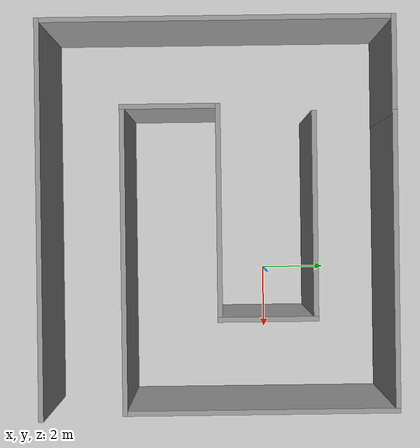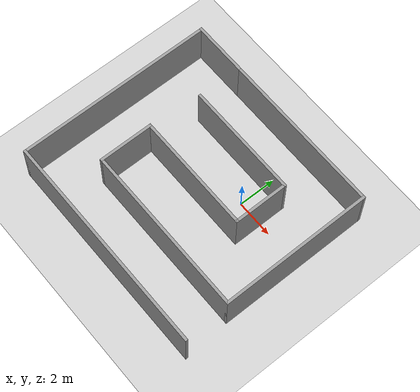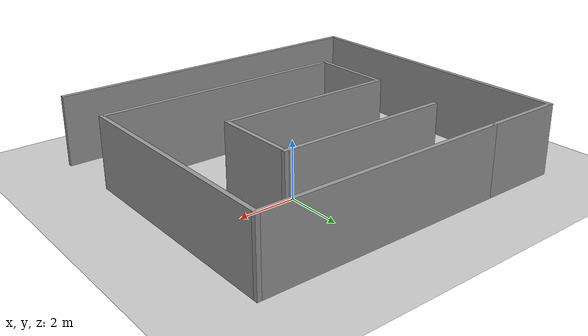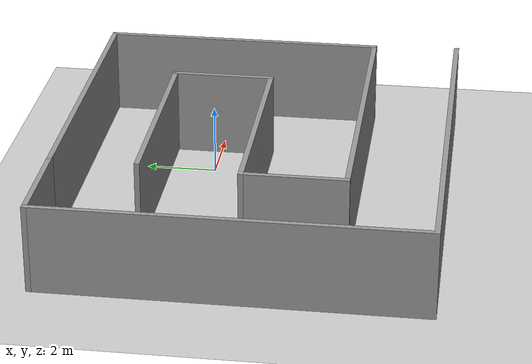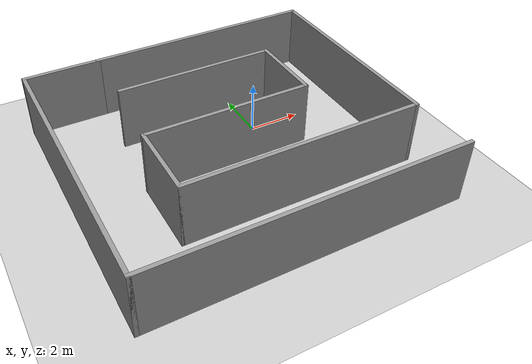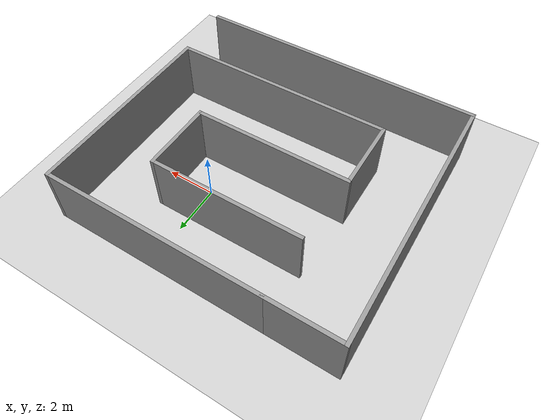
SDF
<sdf version="1.6">
 <world name="default">
  <light name="sun" type="directional">
   <pose>0 0 10 0 -0 0</pose>
   <diffuse>0.8 0.8 0.8 1</diffuse>
   <specular>0.2 0.2 0.2 1</specular>
   <attenuation>
    <range>1000</range>
    <constant>0.9</constant>
    <linear>0.01</linear>
    <quadratic>0.001</quadratic>
   </attenuation>
   <direction>-0.5 0.1 -0.9</direction>
  </light>
  <model name="ground_plane">
   <static>1</static>
   <link name="link">
    <collision name="collision">
     <geometry><plane><normal>0 0 1</normal><size>100 100</size></plane></geometry>
     <surface>
      <contact><collide_bitmask>65535</collide_bitmask></contact>
      <friction><ode><mu>100</mu><mu2>50</mu2></ode></friction>
     </surface>
    </collision>
    <visual name="visual">
     <cast_shadows>0</cast_shadows>
     <geometry><plane><normal>0 0 1</normal><size>100 100</size></plane></geometry>
     <material>
      <script><uri>file://media/materials/scripts/gazebo.material</uri><name>Gazebo/Grey</name></script>
     </material>
    </visual>
   </link>
  </model>
  <gravity>0 0 -9.8</gravity>
  <magnetic_field>6e-06 2.3e-05 -4.2e-05</magnetic_field>
  <atmosphere type="adiabatic"/>
  <physics name="default_physics" default="0" type="ode">
   <max_step_size>0.001</max_step_size>
   <real_time_factor>1</real_time_factor>
   <real_time_update_rate>1000</real_time_update_rate>
  </physics>
  <scene><ambient>0.4 0.4 0.4 1</ambient><background>0.7 0.7 0.7 1</background><shadows>1</shadows></scene>
  <audio><device>default</device></audio>
  <spherical_coordinates>
   <surface_model>EARTH_WGS84</surface_model>
   <latitude_deg>0</latitude_deg>
   <longitude_deg>0</longitude_deg>
   <elevation>0</elevation>
   <heading_deg>0</heading_deg>
  </spherical_coordinates>
  <model name="Untitled">
   <pose>-1.68126 -1.5312 0 0 -0 0</pose>
   <link name="Wall_1">
    <collision name="Wall_1_Collision">
     <geometry><box><size>3 0.15 2.5</size></box></geometry>
     <pose>0 0 1.25 0 -0 0</pose>
    </collision>
    <visual name="Wall_1_Visual">
     <pose>0 0 1.25 0 -0 0</pose>
     <geometry><box><size>3 0.15 2.5</size></box></geometry>
     <material>
      <script><uri>file://media/materials/scripts/gazebo.material</uri><name>Gazebo/Grey</name></script>
      <ambient>1 1 1 1</ambient>
     </material>
     <meta><layer>0</layer></meta>
    </visual>
    <pose>3.025 1.475 0 0 -0 1.5708</pose>
   </link>
   <link name="Wall_10">
    <collision name="Wall_10_Collision">
     <geometry><box><size>12 0.15 2.5</size></box></geometry>
     <pose>0 0 1.25 0 -0 0</pose>
    </collision>
    <visual name="Wall_10_Visual">
     <pose>0 0 1.25 0 -0 0</pose>
     <geometry><box><size>12 0.15 2.5</size></box></geometry>
     <material>
      <script><uri>file://media/materials/scripts/gazebo.material</uri><name>Gazebo/Grey</name></script>
      <ambient>1 1 1 1</ambient>
     </material>
     <meta><layer>0</layer></meta>
    </visual>
    <pose>0 -5.3 0 0 -0 0</pose>
   </link>
   <link name="Wall_12">
    <collision name="Wall_12_Collision">
     <geometry><box><size>6.25 0.15 2.5</size></box></geometry>
     <pose>0 0 1.25 0 -0 0</pose>
    </collision>
    <visual name="Wall_12_Visual">
     <pose>0 0 1.25 0 -0 0</pose>
     <geometry><box><size>6.25 0.15 2.5</size></box></geometry>
     <material>
      <script><uri>file://media/materials/scripts/gazebo.material</uri><name>Gazebo/Grey</name></script>
      <ambient>1 1 1 1</ambient>
     </material>
     <meta><layer>0</layer></meta>
    </visual>
    <pose>-0.025 2.9 0 0 -0 3.14159</pose>
   </link>
   <link name="Wall_3">
    <collision name="Wall_3_Collision">
     <geometry><box><size>6.5 0.15 2.5</size></box></geometry>
     <pose>0 0 1.25 0 -0 0</pose>
    </collision>
    <visual name="Wall_3_Visual">
     <pose>0 0 1.25 0 -0 0</pose>
     <geometry><box><size>6.5 0.15 2.5</size></box></geometry>
     <material>
      <script><uri>file://media/materials/scripts/gazebo.material</uri><name>Gazebo/Grey</name></script>
      <ambient>1 1 1 1</ambient>
     </material>
     <meta><layer>0</layer></meta>
    </visual>
    <pose>-0.15 0.05 0 0 -0 3.14159</pose>
   </link>
   <link name="Wall_4">
    <collision name="Wall_4_Collision">
     <geometry><box><size>3 0.15 2.5</size></box></geometry>
     <pose>0 0 1.25 0 -0 0</pose>
    </collision>
    <visual name="Wall_4_Visual">
     <pose>0 0 1.25 0 -0 0</pose>
     <geometry><box><size>3 0.15 2.5</size></box></geometry>
     <material>
      <script><uri>file://media/materials/scripts/gazebo.material</uri><name>Gazebo/Grey</name></script>
      <ambient>1 1 1 1</ambient>
     </material>
     <meta><layer>0</layer></meta>
    </visual>
    <pose>-3.325 -1.375 0 0 -0 -1.5708</pose>
   </link>
   <link name="Wall_5">
    <collision name="Wall_5_Collision">
     <geometry><box><size>9.25 0.15 2.5</size></box></geometry>
     <pose>0 0 1.25 0 -0 0</pose>
    </collision>
    <visual name="Wall_5_Visual">
     <pose>0 0 1.25 0 -0 0</pose>
     <geometry><box><size>9.25 0.15 2.5</size></box></geometry>
     <material>
      <script><uri>file://media/materials/scripts/gazebo.material</uri><name>Gazebo/Grey</name></script>
      <ambient>1 1 1 1</ambient>
     </material>
     <meta><layer>0</layer></meta>
    </visual>
    <pose>1.225 -2.8 0 0 -0 0</pose>
   </link>
   <link name="Wall_6">
    <collision name="Wall_6_Collision">
     <geometry><box><size>8.25 0.15 2.5</size></box></geometry>
     <pose>0 0 1.25 0 -0 0</pose>
    </collision>
    <visual name="Wall_6_Visual">
     <pose>0 0 1.25 0 -0 0</pose>
     <geometry><box><size>8.25 0.15 2.5</size></box></geometry>
     <material>
      <script><uri>file://media/materials/scripts/gazebo.material</uri><name>Gazebo/Grey</name></script>
      <ambient>1 1 1 1</ambient>
     </material>
     <meta><layer>0</layer></meta>
    </visual>
    <pose>5.775 1.25 0 0 -0 1.5708</pose>
   </link>
   <link name="Wall_7">
    <collision name="Wall_7_Collision">
     <geometry><box><size>9 0.15 2.5</size></box></geometry>
     <pose>0 0 1.25 0 -0 0</pose>
    </collision>
    <visual name="Wall_7_Visual">
     <pose>0 0 1.25 0 -0 0</pose>
     <geometry><box><size>9 0.15 2.5</size></box></geometry>
     <material>
      <script><uri>file://media/materials/scripts/gazebo.material</uri><name>Gazebo/Grey</name></script>
      <ambient>1 1 1 1</ambient>
     </material>
     <meta><layer>0</layer></meta>
    </visual>
    <pose>1.35 5.3 0 0 -0 3.14159</pose>
   </link>
   <link name="Wall_8">
    <collision name="Wall_8_Collision">
     <geometry><box><size>3 0.15 2.5</size></box></geometry>
     <pose>0 0 1.25 0 -0 0</pose>
    </collision>
    <visual name="Wall_8_Visual">
     <pose>0 0 1.25 0 -0 0</pose>
     <geometry><box><size>3 0.15 2.5</size></box></geometry>
     <material>
      <script><uri>file://media/materials/scripts/gazebo.material</uri><name>Gazebo/Grey</name></script>
      <ambient>1 1 1 1</ambient>
     </material>
     <meta><layer>0</layer></meta>
    </visual>
    <pose>-4.5 5.3 0 0 -0 3.14159</pose>
   </link>
   <link name="Wall_9">
    <collision name="Wall_9_Collision">
     <geometry><box><size>10.75 0.15 2.5</size></box></geometry>
     <pose>0 0 1.25 0 -0 0</pose>
    </collision>
    <visual name="Wall_9_Visual">
     <pose>0 0 1.25 0 -0 0</pose>
     <geometry><box><size>10.75 0.15 2.5</size></box></geometry>
     <material>
      <script><uri>file://media/materials/scripts/gazebo.material</uri><name>Gazebo/Grey</name></script>
      <ambient>1 1 1 1</ambient>
     </material>
     <meta><layer>0</layer></meta>
    </visual>
    <pose>-5.925 0 0 0 -0 -1.5708</pose>
   </link>
   <static>1</static>
  </model>
 </world>
</sdf>
